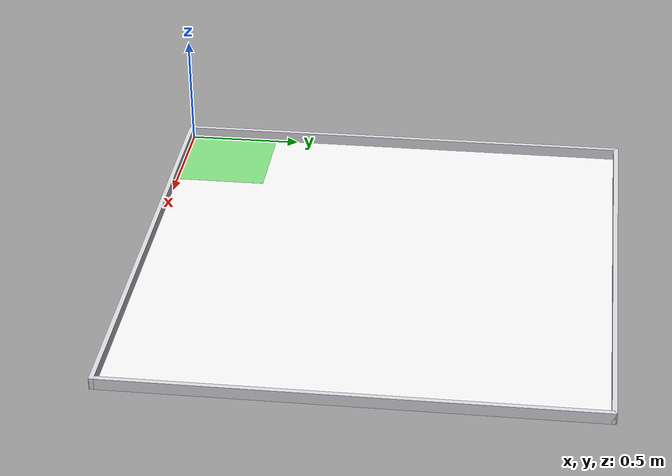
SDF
<?xml version="1.0" ?>
<sdf version="1.8">
  <world name="mdp_arena_empty">
    <!-- Physics engine settings -->
    <physics name="1ms" type="ignored">
      <max_step_size>0.002</max_step_size>
      <real_time_factor>1.0</real_time_factor>
    </physics>

    <!-- Essential Gazebo Harmonic system plugins -->
    <plugin filename="gz-sim-physics-system" name="gz::sim::systems::Physics"/>
    <plugin filename="gz-sim-sensors-system" name="gz::sim::systems::Sensors">
      <render_engine>ogre2</render_engine>
    </plugin>
    <plugin filename="gz-sim-scene-broadcaster-system" name="gz::sim::systems::SceneBroadcaster"/>
    <plugin filename="gz-sim-user-commands-system" name="gz::sim::systems::UserCommands"/>

    <!-- Realistic Lab Lighting -->
    <light type="directional" name="sun">
      <cast_shadows>true</cast_shadows>
      <pose>1.0 1.0 10.0 0 0 0</pose>
      <diffuse>0.9 0.9 0.9 1</diffuse>
      <specular>0.3 0.3 0.3 1</specular>
      <direction>-0.15 -0.15 -1.0</direction>
    </light>

    <scene>
      <ambient>0.65 0.65 0.65 1.0</ambient>
      <background>0.82 0.86 0.90 1.0</background>
      <shadows>true</shadows>
    </scene>

    <!-- Floor (2.0m x 2.0m arena with 10cm grid and 40cm start carpark) -->
    <model name="arena_floor">
      <static>true</static>
      <link name="floor_link">
        <collision name="floor_collision">
          <geometry>
            <plane>
              <normal>0 0 1</normal>
              <size>10.0 10.0</size>
            </plane>
          </geometry>
          <surface>
            <friction>
              <ode>
                <mu>1.0</mu>
                <mu2>1.0</mu2>
              </ode>
            </friction>
          </surface>
        </collision>

        <!-- 2.0m x 2.0m Arena Floor Surface (white board matching NTU lab) -->
        <visual name="arena_surface">
          <pose>1.0 1.0 0.0005 0 0 0</pose>
          <geometry>
            <box>
              <size>2.0 2.0 0.001</size>
            </box>
          </geometry>
          <material>
            <ambient>0.96 0.96 0.96 1</ambient>
            <diffuse>0.96 0.96 0.96 1</diffuse>
            <pbr>
              <metal>
                <albedo_map>materials/textures/arena_grid.png</albedo_map>
              </metal>
            </pbr>
          </material>
        </visual>

        <!-- 40cm x 40cm Start Zone at [0, 0] to [0.4, 0.4] -->
        <visual name="start_zone_carpark">
          <pose>0.20 0.20 0.0012 0 0 0</pose>
          <geometry>
            <box>
              <size>0.40 0.40 0.0005</size>
            </box>
          </geometry>
          <material>
            <ambient>0.25 0.85 0.25 0.6</ambient>
            <diffuse>0.25 0.85 0.25 0.6</diffuse>
          </material>
        </visual>
      </link>
    </model>

    <!-- Realistic Low Arena Border (2.0m x 2.0m, height 0.05m = 5cm, thickness 0.02m) -->
    <model name="boundary_walls">
      <static>true</static>
      <link name="walls_link">
        <!-- South Border (y = 0) -->
        <collision name="south_wall_col">
          <pose>1.0 -0.01 0.025 0 0 0</pose>
          <geometry><box><size>2.04 0.02 0.05</size></box></geometry>
        </collision>
        <visual name="south_wall_vis">
          <pose>1.0 -0.01 0.025 0 0 0</pose>
          <geometry><box><size>2.04 0.02 0.05</size></box></geometry>
          <material><ambient>0.85 0.85 0.88 1</ambient><diffuse>0.85 0.85 0.88 1</diffuse></material>
        </visual>

        <!-- North Border (y = 2.0) -->
        <collision name="north_wall_col">
          <pose>1.0 2.01 0.025 0 0 0</pose>
          <geometry><box><size>2.04 0.02 0.05</size></box></geometry>
        </collision>
        <visual name="north_wall_vis">
          <pose>1.0 2.01 0.025 0 0 0</pose>
          <geometry><box><size>2.04 0.02 0.05</size></box></geometry>
          <material><ambient>0.85 0.85 0.88 1</ambient><diffuse>0.85 0.85 0.88 1</diffuse></material>
        </visual>

        <!-- West Border (x = 0) -->
        <collision name="west_wall_col">
          <pose>-0.01 1.0 0.025 0 0 0</pose>
          <geometry><box><size>0.02 2.04 0.05</size></box></geometry>
        </collision>
        <visual name="west_wall_vis">
          <pose>-0.01 1.0 0.025 0 0 0</pose>
          <geometry><box><size>0.02 2.04 0.05</size></box></geometry>
          <material><ambient>0.85 0.85 0.88 1</ambient><diffuse>0.85 0.85 0.88 1</diffuse></material>
        </visual>

        <!-- East Border (x = 2.0) -->
        <collision name="east_wall_col">
          <pose>2.01 1.0 0.025 0 0 0</pose>
          <geometry><box><size>0.02 2.04 0.05</size></box></geometry>
        </collision>
        <visual name="east_wall_vis">
          <pose>2.01 1.0 0.025 0 0 0</pose>
          <geometry><box><size>0.02 2.04 0.05</size></box></geometry>
          <material><ambient>0.85 0.85 0.88 1</ambient><diffuse>0.85 0.85 0.88 1</diffuse></material>
        </visual>
      </link>
    </model>

  </world>
</sdf>
